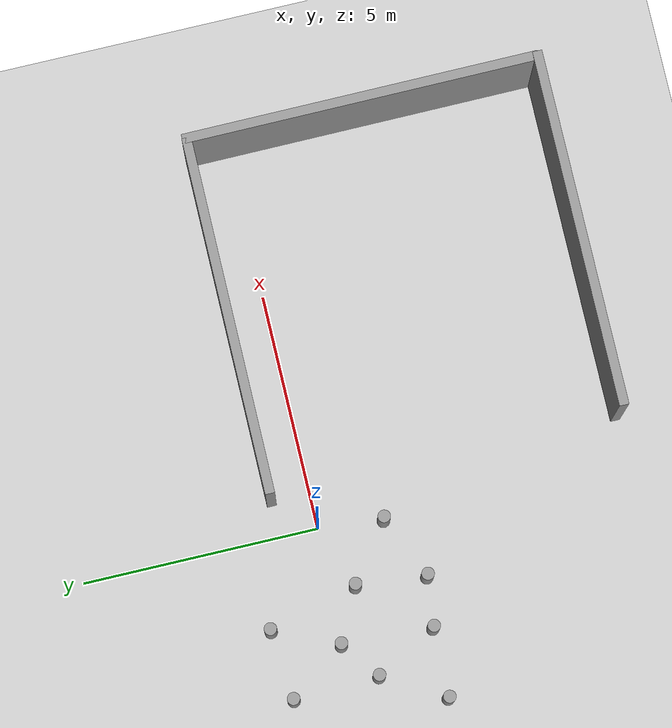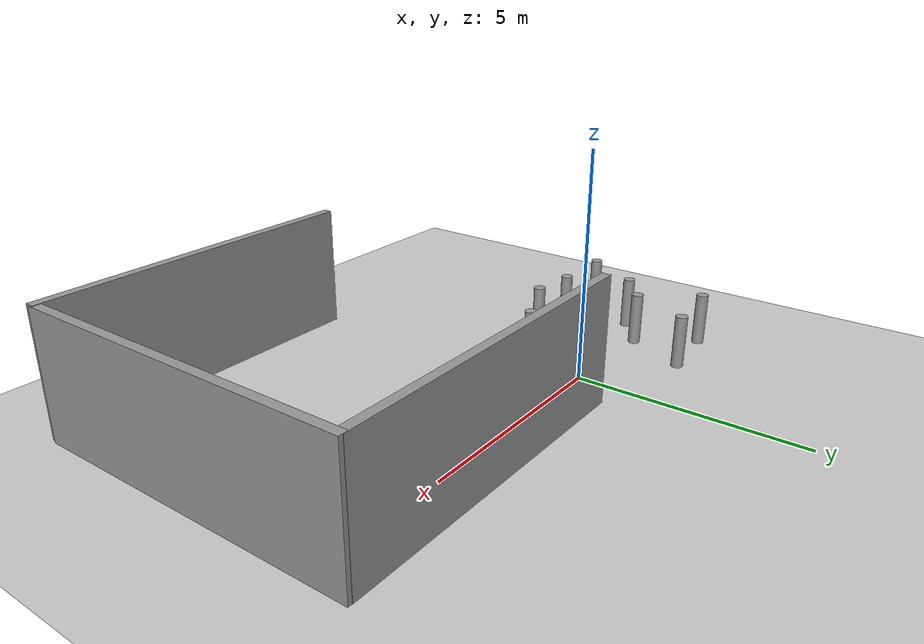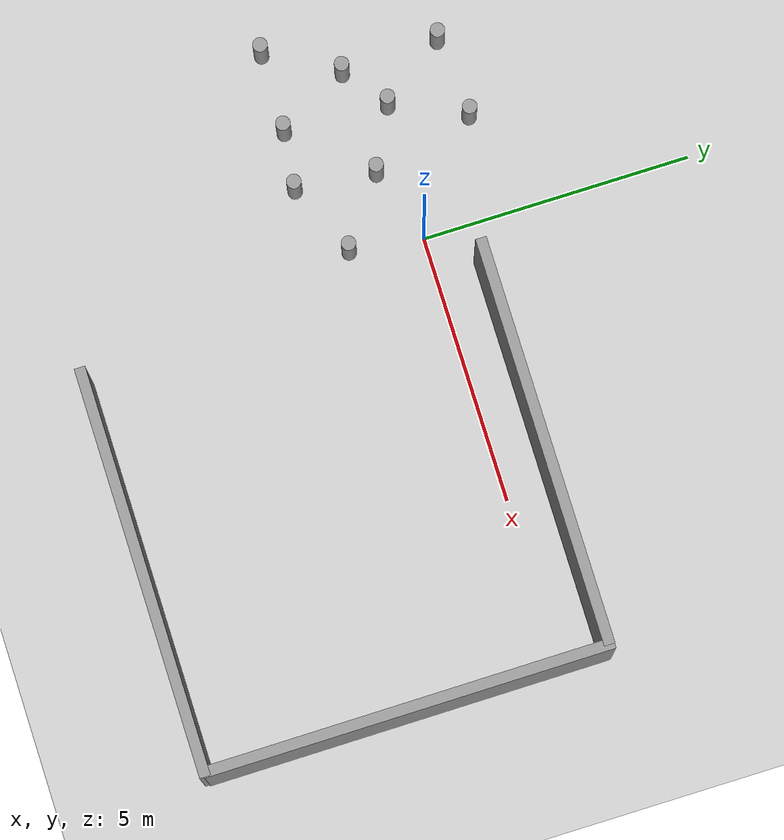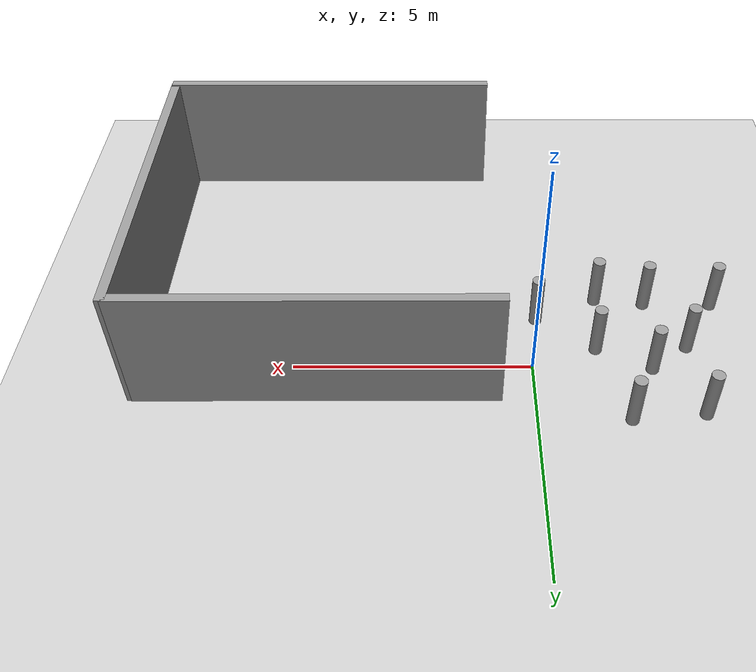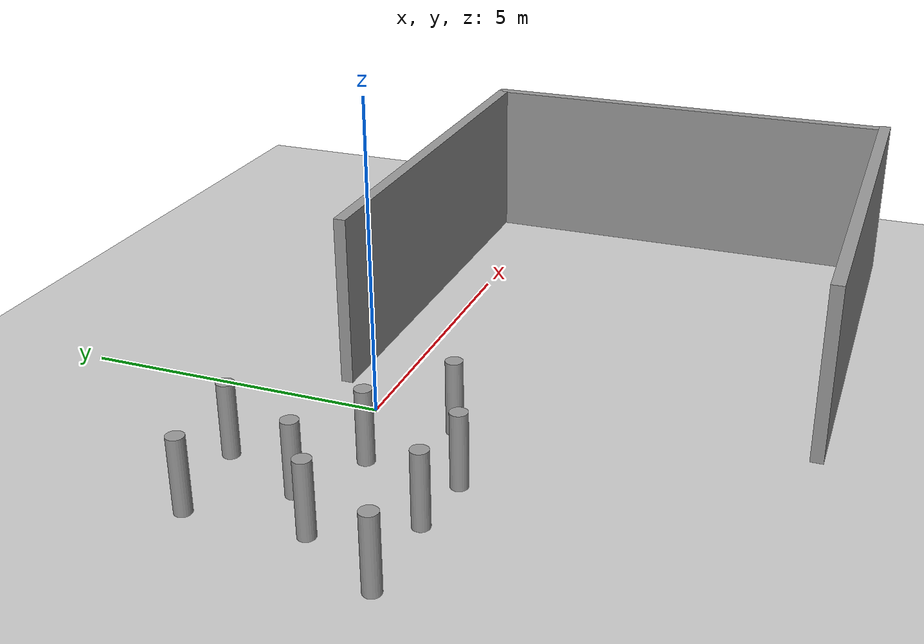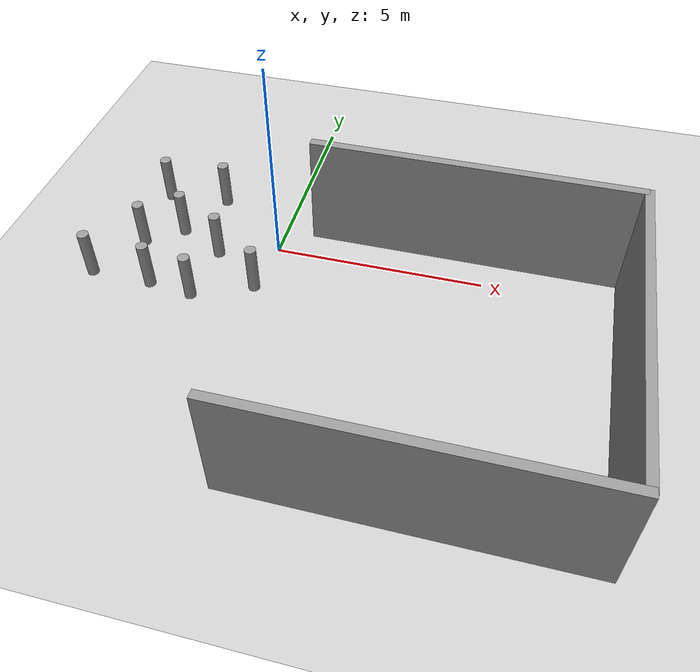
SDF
<sdf version="1.7">
 <world name="default">
  <model name="ground_plane">
   <static>1</static>
   <link name="link">
    <collision name="collision">
     <geometry><plane><normal>0 0 1</normal><size>100 100</size></plane></geometry>
     <surface>
      <contact><collide_bitmask>65535</collide_bitmask></contact>
      <friction><ode><mu>100</mu><mu2>50</mu2></ode></friction>
     </surface>
    </collision>
    <visual name="visual">
     <cast_shadows>0</cast_shadows>
     <geometry><plane><normal>0 0 1</normal><size>100 100</size></plane></geometry>
     <material>
      <script><uri>file://media/materials/scripts/gazebo.material</uri><name>Gazebo/Grey</name></script>
     </material>
    </visual>
   </link>
  </model>
  <model name="grey_wall">
   <static>1</static>
   <link name="link">
    <pose>0 0 1.4 0 -0 0</pose>
    <collision name="collision"><geometry><box><size>7.5 0.2 2.8</size></box></geometry></collision>
    <visual name="visual">
     <cast_shadows>0</cast_shadows>
     <geometry><box><size>7.5 0.2 2.8</size></box></geometry>
     <material>
      <script>
       <uri>model://grey_wall/materials/scripts</uri>
       <uri>model://grey_wall/materials/textures</uri>
       <name>vrc/grey_wall</name>
      </script>
     </material>
    </visual>
   </link>
   <pose>4.4311 0.82025 0 0 -0 0</pose>
  </model>
  <model name="grey_wall_clone_1_clone">
   <static>1</static>
   <link name="link">
    <pose>0 0 1.4 0 -0 0</pose>
    <collision name="collision"><geometry><box><size>7.5 0.2 2.8</size></box></geometry></collision>
    <visual name="visual">
     <cast_shadows>0</cast_shadows>
     <geometry><box><size>7.5 0.2 2.8</size></box></geometry>
     <material>
      <script>
       <uri>model://grey_wall/materials/scripts</uri>
       <uri>model://grey_wall/materials/textures</uri>
       <name>vrc/grey_wall</name>
      </script>
     </material>
    </visual>
   </link>
   <pose>8.18724 -2.8403 0 0 0 -1.56673</pose>
  </model>
  <model name="grey_wall_clone_1">
   <static>1</static>
   <link name="link">
    <pose>0 0 1.4 0 -0 0</pose>
    <collision name="collision"><geometry><box><size>7.5 0.2 2.8</size></box></geometry></collision>
    <visual name="visual">
     <cast_shadows>0</cast_shadows>
     <geometry><box><size>7.5 0.2 2.8</size></box></geometry>
     <material>
      <script>
       <uri>model://grey_wall/materials/scripts</uri>
       <uri>model://grey_wall/materials/textures</uri>
       <name>vrc/grey_wall</name>
      </script>
     </material>
    </visual>
   </link>
   <pose>4.53373 -6.57682 0.01885 0 -0 0</pose>
  </model>
  <model name="triangle_lattice">
   <model name="smaller_cylinder">
    <model name="smaller_cylinder_1">
     <link name="link">
      <inertial>
       <mass>0.0872829</mass>
       <inertia>
        <ixx>0.0108064</ixx>
        <ixy>0</ixy>
        <ixz>0</ixz>
        <iyy>0.0108064</iyy>
        <iyz>0</iyz>
        <izz>0.000796093</izz>
       </inertia>
      </inertial>
      <visual name="visual">
       <geometry><cylinder><radius>0.135062</radius><length>1.19624</length></cylinder></geometry>
       <material>
        <script><name>Gazebo/Grey</name><uri>file://media/materials/scripts/gazebo.material</uri></script>
        <shader type="pixel"/>
       </material>
      </visual>
      <collision name="collision">
       <geometry><cylinder><radius>0.135062</radius><length>1.19624</length></cylinder></geometry>
       <surface>
        <friction>
         <ode><mu>1</mu><mu2>1</mu2><fdir1>0 0 0</fdir1><slip1>0</slip1><slip2>0</slip2></ode>
         <torsional>
          <coefficient>1</coefficient>
          <patch_radius>0</patch_radius>
          <surface_radius>0</surface_radius>
          <use_patch_radius>1</use_patch_radius>
          <ode><slip>0</slip></ode>
         </torsional>
        </friction>
        <bounce><restitution_coefficient>0</restitution_coefficient><threshold>1e+06</threshold></bounce>
        <contact>
         <collide_without_contact>0</collide_without_contact>
         <collide_without_contact_bitmask>1</collide_without_contact_bitmask>
         <collide_bitmask>1</collide_bitmask>
         <ode>
          <soft_cfm>0</soft_cfm>
          <soft_erp>0.2</soft_erp>
          <kp>1e+13</kp>
          <kd>1</kd>
          <max_vel>0.01</max_vel>
          <min_depth>0</min_depth>
         </ode>
         <bullet>
          <split_impulse>1</split_impulse>
          <split_impulse_penetration_threshold>-0.01</split_impulse_penetration_threshold>
          <soft_cfm>0</soft_cfm>
          <soft_erp>0.2</soft_erp>
          <kp>1e+13</kp>
          <kd>1</kd>
         </bullet>
        </contact>
       </surface>
      </collision>
     </link>
     <static>0</static>
     <pose>0.044198 -0.101528 0 0 -0 0</pose>
    </model>
    <static>1</static>
    <allow_auto_disable>0</allow_auto_disable>
    <pose>-3.76148 0.681051 0 0 -0 0</pose>
   </model>
   <model name="smaller_cylinder_0">
    <model name="smaller_cylinder_1">
     <link name="link">
      <inertial>
       <mass>0.0872829</mass>
       <inertia>
        <ixx>0.0108064</ixx>
        <ixy>0</ixy>
        <ixz>0</ixz>
        <iyy>0.0108064</iyy>
        <iyz>0</iyz>
        <izz>0.000796093</izz>
       </inertia>
      </inertial>
      <visual name="visual">
       <geometry><cylinder><radius>0.135062</radius><length>1.19624</length></cylinder></geometry>
       <material>
        <script><name>Gazebo/Grey</name><uri>file://media/materials/scripts/gazebo.material</uri></script>
        <shader type="pixel"/>
       </material>
      </visual>
      <collision name="collision">
       <geometry><cylinder><radius>0.135062</radius><length>1.19624</length></cylinder></geometry>
       <surface>
        <friction>
         <ode><mu>1</mu><mu2>1</mu2><fdir1>0 0 0</fdir1><slip1>0</slip1><slip2>0</slip2></ode>
         <torsional>
          <coefficient>1</coefficient>
          <patch_radius>0</patch_radius>
          <surface_radius>0</surface_radius>
          <use_patch_radius>1</use_patch_radius>
          <ode><slip>0</slip></ode>
         </torsional>
        </friction>
        <bounce><restitution_coefficient>0</restitution_coefficient><threshold>1e+06</threshold></bounce>
        <contact>
         <collide_without_contact>0</collide_without_contact>
         <collide_without_contact_bitmask>1</collide_without_contact_bitmask>
         <collide_bitmask>1</collide_bitmask>
         <ode>
          <soft_cfm>0</soft_cfm>
          <soft_erp>0.2</soft_erp>
          <kp>1e+13</kp>
          <kd>1</kd>
          <max_vel>0.01</max_vel>
          <min_depth>0</min_depth>
         </ode>
         <bullet>
          <split_impulse>1</split_impulse>
          <split_impulse_penetration_threshold>-0.01</split_impulse_penetration_threshold>
          <soft_cfm>0</soft_cfm>
          <soft_erp>0.2</soft_erp>
          <kp>1e+13</kp>
          <kd>1</kd>
         </bullet>
        </contact>
       </surface>
      </collision>
     </link>
     <static>0</static>
     <pose>0.044198 -0.101528 0 0 -0 0</pose>
    </model>
    <static>1</static>
    <allow_auto_disable>0</allow_auto_disable>
    <pose>-2.72489 1.77147 0 0 -0 0</pose>
   </model>
   <model name="smaller_cylinder_1">
    <model name="smaller_cylinder_1">
     <link name="link">
      <inertial>
       <mass>0.0872829</mass>
       <inertia>
        <ixx>0.0108064</ixx>
        <ixy>0</ixy>
        <ixz>0</ixz>
        <iyy>0.0108064</iyy>
        <iyz>0</iyz>
        <izz>0.000796093</izz>
       </inertia>
      </inertial>
      <visual name="visual">
       <geometry><cylinder><radius>0.135062</radius><length>1.19624</length></cylinder></geometry>
       <material>
        <script><name>Gazebo/Grey</name><uri>file://media/materials/scripts/gazebo.material</uri></script>
        <shader type="pixel"/>
       </material>
      </visual>
      <collision name="collision">
       <geometry><cylinder><radius>0.135062</radius><length>1.19624</length></cylinder></geometry>
       <surface>
        <friction>
         <ode><mu>1</mu><mu2>1</mu2><fdir1>0 0 0</fdir1><slip1>0</slip1><slip2>0</slip2></ode>
         <torsional>
          <coefficient>1</coefficient>
          <patch_radius>0</patch_radius>
          <surface_radius>0</surface_radius>
          <use_patch_radius>1</use_patch_radius>
          <ode><slip>0</slip></ode>
         </torsional>
        </friction>
        <bounce><restitution_coefficient>0</restitution_coefficient><threshold>1e+06</threshold></bounce>
        <contact>
         <collide_without_contact>0</collide_without_contact>
         <collide_without_contact_bitmask>1</collide_without_contact_bitmask>
         <collide_bitmask>1</collide_bitmask>
         <ode>
          <soft_cfm>0</soft_cfm>
          <soft_erp>0.2</soft_erp>
          <kp>1e+13</kp>
          <kd>1</kd>
          <max_vel>0.01</max_vel>
          <min_depth>0</min_depth>
         </ode>
         <bullet>
          <split_impulse>1</split_impulse>
          <split_impulse_penetration_threshold>-0.01</split_impulse_penetration_threshold>
          <soft_cfm>0</soft_cfm>
          <soft_erp>0.2</soft_erp>
          <kp>1e+13</kp>
          <kd>1</kd>
         </bullet>
        </contact>
       </surface>
      </collision>
     </link>
     <static>0</static>
     <pose>0.044198 -0.101528 0 0 -0 0</pose>
    </model>
    <static>1</static>
    <allow_auto_disable>0</allow_auto_disable>
    <pose>-2.31989 0.319731 0 0 -0 0</pose>
   </model>
   <static>1</static>
   <pose>-1.25429 3.63555 0.598119 0 -0 1.38908</pose>
  </model>
  <model name="triangle_lattice_clone">
   <model name="smaller_cylinder">
    <model name="smaller_cylinder_1">
     <link name="link">
      <inertial>
       <mass>0.0872829</mass>
       <inertia>
        <ixx>0.0108064</ixx>
        <ixy>0</ixy>
        <ixz>0</ixz>
        <iyy>0.0108064</iyy>
        <iyz>0</iyz>
        <izz>0.000796093</izz>
       </inertia>
      </inertial>
      <visual name="visual">
       <geometry><cylinder><radius>0.135062</radius><length>1.19624</length></cylinder></geometry>
       <material>
        <script><name>Gazebo/Grey</name><uri>file://media/materials/scripts/gazebo.material</uri></script>
        <shader type="pixel"/>
       </material>
      </visual>
      <collision name="collision">
       <geometry><cylinder><radius>0.135062</radius><length>1.19624</length></cylinder></geometry>
       <surface>
        <friction>
         <ode><mu>1</mu><mu2>1</mu2><fdir1>0 0 0</fdir1><slip1>0</slip1><slip2>0</slip2></ode>
         <torsional>
          <coefficient>1</coefficient>
          <patch_radius>0</patch_radius>
          <surface_radius>0</surface_radius>
          <use_patch_radius>1</use_patch_radius>
          <ode><slip>0</slip></ode>
         </torsional>
        </friction>
        <bounce><restitution_coefficient>0</restitution_coefficient><threshold>1e+06</threshold></bounce>
        <contact>
         <collide_without_contact>0</collide_without_contact>
         <collide_without_contact_bitmask>1</collide_without_contact_bitmask>
         <collide_bitmask>1</collide_bitmask>
         <ode>
          <soft_cfm>0</soft_cfm>
          <soft_erp>0.2</soft_erp>
          <kp>1e+13</kp>
          <kd>1</kd>
          <max_vel>0.01</max_vel>
          <min_depth>0</min_depth>
         </ode>
         <bullet>
          <split_impulse>1</split_impulse>
          <split_impulse_penetration_threshold>-0.01</split_impulse_penetration_threshold>
          <soft_cfm>0</soft_cfm>
          <soft_erp>0.2</soft_erp>
          <kp>1e+13</kp>
          <kd>1</kd>
         </bullet>
        </contact>
       </surface>
      </collision>
     </link>
     <static>0</static>
     <pose>0.044198 -0.101528 0 0 -0 0</pose>
    </model>
    <static>1</static>
    <allow_auto_disable>0</allow_auto_disable>
    <pose>-3.76148 0.681051 0 0 -0 0</pose>
   </model>
   <model name="smaller_cylinder_0">
    <model name="smaller_cylinder_1">
     <link name="link">
      <inertial>
       <mass>0.0872829</mass>
       <inertia>
        <ixx>0.0108064</ixx>
        <ixy>0</ixy>
        <ixz>0</ixz>
        <iyy>0.0108064</iyy>
        <iyz>0</iyz>
        <izz>0.000796093</izz>
       </inertia>
      </inertial>
      <visual name="visual">
       <geometry><cylinder><radius>0.135062</radius><length>1.19624</length></cylinder></geometry>
       <material>
        <script><name>Gazebo/Grey</name><uri>file://media/materials/scripts/gazebo.material</uri></script>
        <shader type="pixel"/>
       </material>
      </visual>
      <collision name="collision">
       <geometry><cylinder><radius>0.135062</radius><length>1.19624</length></cylinder></geometry>
       <surface>
        <friction>
         <ode><mu>1</mu><mu2>1</mu2><fdir1>0 0 0</fdir1><slip1>0</slip1><slip2>0</slip2></ode>
         <torsional>
          <coefficient>1</coefficient>
          <patch_radius>0</patch_radius>
          <surface_radius>0</surface_radius>
          <use_patch_radius>1</use_patch_radius>
          <ode><slip>0</slip></ode>
         </torsional>
        </friction>
        <bounce><restitution_coefficient>0</restitution_coefficient><threshold>1e+06</threshold></bounce>
        <contact>
         <collide_without_contact>0</collide_without_contact>
         <collide_without_contact_bitmask>1</collide_without_contact_bitmask>
         <collide_bitmask>1</collide_bitmask>
         <ode>
          <soft_cfm>0</soft_cfm>
          <soft_erp>0.2</soft_erp>
          <kp>1e+13</kp>
          <kd>1</kd>
          <max_vel>0.01</max_vel>
          <min_depth>0</min_depth>
         </ode>
         <bullet>
          <split_impulse>1</split_impulse>
          <split_impulse_penetration_threshold>-0.01</split_impulse_penetration_threshold>
          <soft_cfm>0</soft_cfm>
          <soft_erp>0.2</soft_erp>
          <kp>1e+13</kp>
          <kd>1</kd>
         </bullet>
        </contact>
       </surface>
      </collision>
     </link>
     <static>0</static>
     <pose>0.044198 -0.101528 0 0 -0 0</pose>
    </model>
    <static>1</static>
    <allow_auto_disable>0</allow_auto_disable>
    <pose>-2.72489 1.77147 0 0 -0 0</pose>
   </model>
   <model name="smaller_cylinder_1">
    <model name="smaller_cylinder_1">
     <link name="link">
      <inertial>
       <mass>0.0872829</mass>
       <inertia>
        <ixx>0.0108064</ixx>
        <ixy>0</ixy>
        <ixz>0</ixz>
        <iyy>0.0108064</iyy>
        <iyz>0</iyz>
        <izz>0.000796093</izz>
       </inertia>
      </inertial>
      <visual name="visual">
       <geometry><cylinder><radius>0.135062</radius><length>1.19624</length></cylinder></geometry>
       <material>
        <script><name>Gazebo/Grey</name><uri>file://media/materials/scripts/gazebo.material</uri></script>
        <shader type="pixel"/>
       </material>
      </visual>
      <collision name="collision">
       <geometry><cylinder><radius>0.135062</radius><length>1.19624</length></cylinder></geometry>
       <surface>
        <friction>
         <ode><mu>1</mu><mu2>1</mu2><fdir1>0 0 0</fdir1><slip1>0</slip1><slip2>0</slip2></ode>
         <torsional>
          <coefficient>1</coefficient>
          <patch_radius>0</patch_radius>
          <surface_radius>0</surface_radius>
          <use_patch_radius>1</use_patch_radius>
          <ode><slip>0</slip></ode>
         </torsional>
        </friction>
        <bounce><restitution_coefficient>0</restitution_coefficient><threshold>1e+06</threshold></bounce>
        <contact>
         <collide_without_contact>0</collide_without_contact>
         <collide_without_contact_bitmask>1</collide_without_contact_bitmask>
         <collide_bitmask>1</collide_bitmask>
         <ode>
          <soft_cfm>0</soft_cfm>
          <soft_erp>0.2</soft_erp>
          <kp>1e+13</kp>
          <kd>1</kd>
          <max_vel>0.01</max_vel>
          <min_depth>0</min_depth>
         </ode>
         <bullet>
          <split_impulse>1</split_impulse>
          <split_impulse_penetration_threshold>-0.01</split_impulse_penetration_threshold>
          <soft_cfm>0</soft_cfm>
          <soft_erp>0.2</soft_erp>
          <kp>1e+13</kp>
          <kd>1</kd>
         </bullet>
        </contact>
       </surface>
      </collision>
     </link>
     <static>0</static>
     <pose>0.044198 -0.101528 0 0 -0 0</pose>
    </model>
    <static>1</static>
    <allow_auto_disable>0</allow_auto_disable>
    <pose>-2.31989 0.319731 0 0 -0 0</pose>
   </model>
   <static>1</static>
   <pose>1.76663 -0.140684 0.598117 0 -0 0.664333</pose>
  </model>
  <model name="triangle_lattice_clone_clone_0">
   <model name="smaller_cylinder">
    <model name="smaller_cylinder_1">
     <link name="link">
      <inertial>
       <mass>0.0872829</mass>
       <inertia>
        <ixx>0.0108064</ixx>
        <ixy>0</ixy>
        <ixz>0</ixz>
        <iyy>0.0108064</iyy>
        <iyz>0</iyz>
        <izz>0.000796093</izz>
       </inertia>
      </inertial>
      <visual name="visual">
       <geometry><cylinder><radius>0.135062</radius><length>1.19624</length></cylinder></geometry>
       <material>
        <script><name>Gazebo/Grey</name><uri>file://media/materials/scripts/gazebo.material</uri></script>
        <shader type="pixel"/>
       </material>
      </visual>
      <collision name="collision">
       <geometry><cylinder><radius>0.135062</radius><length>1.19624</length></cylinder></geometry>
       <surface>
        <friction>
         <ode><mu>1</mu><mu2>1</mu2><fdir1>0 0 0</fdir1><slip1>0</slip1><slip2>0</slip2></ode>
         <torsional>
          <coefficient>1</coefficient>
          <patch_radius>0</patch_radius>
          <surface_radius>0</surface_radius>
          <use_patch_radius>1</use_patch_radius>
          <ode><slip>0</slip></ode>
         </torsional>
        </friction>
        <bounce><restitution_coefficient>0</restitution_coefficient><threshold>1e+06</threshold></bounce>
        <contact>
         <collide_without_contact>0</collide_without_contact>
         <collide_without_contact_bitmask>1</collide_without_contact_bitmask>
         <collide_bitmask>1</collide_bitmask>
         <ode>
          <soft_cfm>0</soft_cfm>
          <soft_erp>0.2</soft_erp>
          <kp>1e+13</kp>
          <kd>1</kd>
          <max_vel>0.01</max_vel>
          <min_depth>0</min_depth>
         </ode>
         <bullet>
          <split_impulse>1</split_impulse>
          <split_impulse_penetration_threshold>-0.01</split_impulse_penetration_threshold>
          <soft_cfm>0</soft_cfm>
          <soft_erp>0.2</soft_erp>
          <kp>1e+13</kp>
          <kd>1</kd>
         </bullet>
        </contact>
       </surface>
      </collision>
     </link>
     <static>0</static>
     <pose>0.044198 -0.101528 0 0 -0 0</pose>
    </model>
    <static>1</static>
    <allow_auto_disable>0</allow_auto_disable>
    <pose>-3.76148 0.681051 0 0 -0 0</pose>
   </model>
   <model name="smaller_cylinder_0">
    <model name="smaller_cylinder_1">
     <link name="link">
      <inertial>
       <mass>0.0872829</mass>
       <inertia>
        <ixx>0.0108064</ixx>
        <ixy>0</ixy>
        <ixz>0</ixz>
        <iyy>0.0108064</iyy>
        <iyz>0</iyz>
        <izz>0.000796093</izz>
       </inertia>
      </inertial>
      <visual name="visual">
       <geometry><cylinder><radius>0.135062</radius><length>1.19624</length></cylinder></geometry>
       <material>
        <script><name>Gazebo/Grey</name><uri>file://media/materials/scripts/gazebo.material</uri></script>
        <shader type="pixel"/>
       </material>
      </visual>
      <collision name="collision">
       <geometry><cylinder><radius>0.135062</radius><length>1.19624</length></cylinder></geometry>
       <surface>
        <friction>
         <ode><mu>1</mu><mu2>1</mu2><fdir1>0 0 0</fdir1><slip1>0</slip1><slip2>0</slip2></ode>
         <torsional>
          <coefficient>1</coefficient>
          <patch_radius>0</patch_radius>
          <surface_radius>0</surface_radius>
          <use_patch_radius>1</use_patch_radius>
          <ode><slip>0</slip></ode>
         </torsional>
        </friction>
        <bounce><restitution_coefficient>0</restitution_coefficient><threshold>1e+06</threshold></bounce>
        <contact>
         <collide_without_contact>0</collide_without_contact>
         <collide_without_contact_bitmask>1</collide_without_contact_bitmask>
         <collide_bitmask>1</collide_bitmask>
         <ode>
          <soft_cfm>0</soft_cfm>
          <soft_erp>0.2</soft_erp>
          <kp>1e+13</kp>
          <kd>1</kd>
          <max_vel>0.01</max_vel>
          <min_depth>0</min_depth>
         </ode>
         <bullet>
          <split_impulse>1</split_impulse>
          <split_impulse_penetration_threshold>-0.01</split_impulse_penetration_threshold>
          <soft_cfm>0</soft_cfm>
          <soft_erp>0.2</soft_erp>
          <kp>1e+13</kp>
          <kd>1</kd>
         </bullet>
        </contact>
       </surface>
      </collision>
     </link>
     <static>0</static>
     <pose>0.044198 -0.101528 0 0 -0 0</pose>
    </model>
    <static>1</static>
    <allow_auto_disable>0</allow_auto_disable>
    <pose>-2.72489 1.77147 0 0 -0 0</pose>
   </model>
   <model name="smaller_cylinder_1">
    <model name="smaller_cylinder_1">
     <link name="link">
      <inertial>
       <mass>0.0872829</mass>
       <inertia>
        <ixx>0.0108064</ixx>
        <ixy>0</ixy>
        <ixz>0</ixz>
        <iyy>0.0108064</iyy>
        <iyz>0</iyz>
        <izz>0.000796093</izz>
       </inertia>
      </inertial>
      <visual name="visual">
       <geometry><cylinder><radius>0.135062</radius><length>1.19624</length></cylinder></geometry>
       <material>
        <script><name>Gazebo/Grey</name><uri>file://media/materials/scripts/gazebo.material</uri></script>
        <shader type="pixel"/>
       </material>
      </visual>
      <collision name="collision">
       <geometry><cylinder><radius>0.135062</radius><length>1.19624</length></cylinder></geometry>
       <surface>
        <friction>
         <ode><mu>1</mu><mu2>1</mu2><fdir1>0 0 0</fdir1><slip1>0</slip1><slip2>0</slip2></ode>
         <torsional>
          <coefficient>1</coefficient>
          <patch_radius>0</patch_radius>
          <surface_radius>0</surface_radius>
          <use_patch_radius>1</use_patch_radius>
          <ode><slip>0</slip></ode>
         </torsional>
        </friction>
        <bounce><restitution_coefficient>0</restitution_coefficient><threshold>1e+06</threshold></bounce>
        <contact>
         <collide_without_contact>0</collide_without_contact>
         <collide_without_contact_bitmask>1</collide_without_contact_bitmask>
         <collide_bitmask>1</collide_bitmask>
         <ode>
          <soft_cfm>0</soft_cfm>
          <soft_erp>0.2</soft_erp>
          <kp>1e+13</kp>
          <kd>1</kd>
          <max_vel>0.01</max_vel>
          <min_depth>0</min_depth>
         </ode>
         <bullet>
          <split_impulse>1</split_impulse>
          <split_impulse_penetration_threshold>-0.01</split_impulse_penetration_threshold>
          <soft_cfm>0</soft_cfm>
          <soft_erp>0.2</soft_erp>
          <kp>1e+13</kp>
          <kd>1</kd>
         </bullet>
        </contact>
       </surface>
      </collision>
     </link>
     <static>0</static>
     <pose>0.044198 -0.101528 0 0 -0 0</pose>
    </model>
    <static>1</static>
    <allow_auto_disable>0</allow_auto_disable>
    <pose>-2.31989 0.319731 0 0 -0 0</pose>
   </model>
   <static>1</static>
   <pose>-0.319969 -1.55001 0.598111 0 -0 0.227246</pose>
  </model>
 </world>
</sdf>
